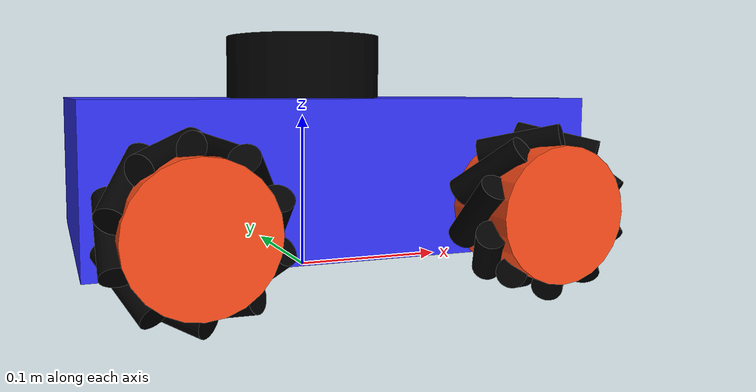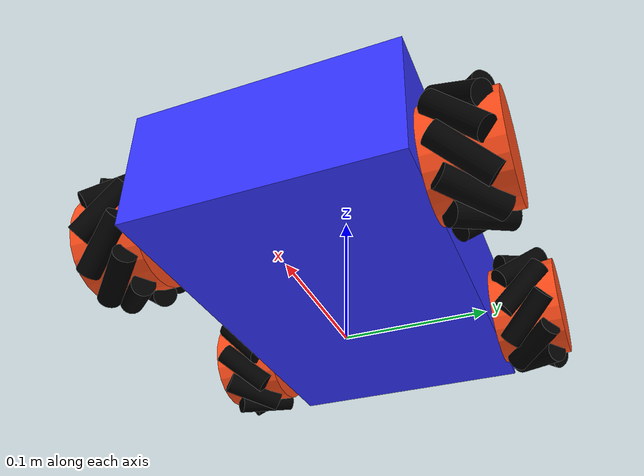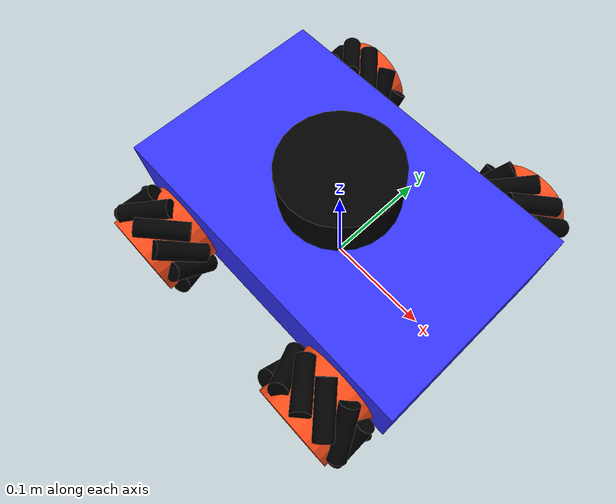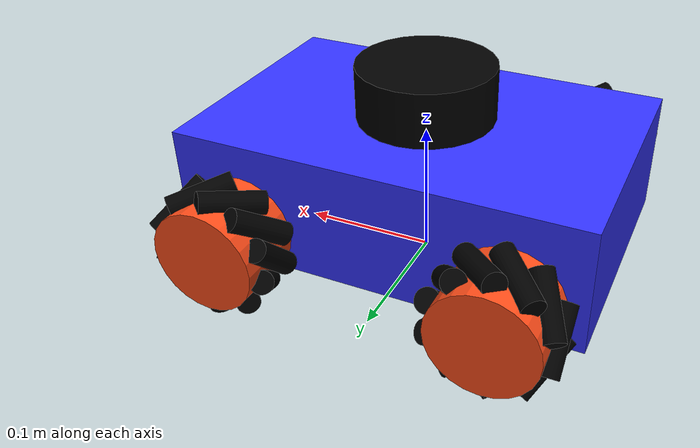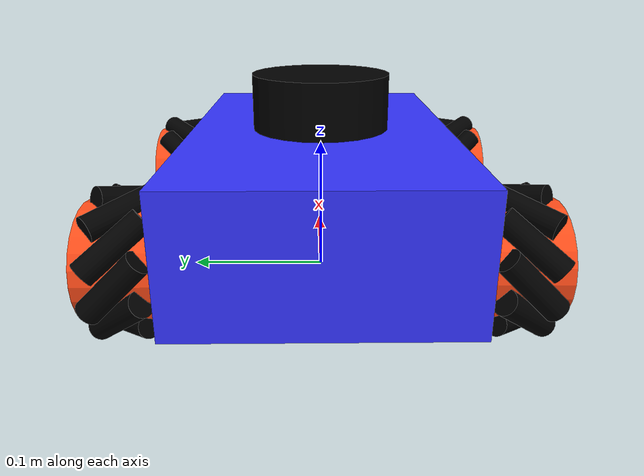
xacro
<?xml version="1.0"?>
<robot xmlns:xacro="http://www.ros.org/wiki/xacro"  name="robot">

    <xacro:include filename="rona_ros2_control.xacro"/>
    <xacro:include filename="rona_gazebo.xacro"/>
    <xacro:include filename="robot_core.xacro"/>
    <xacro:include filename="lidar.xacro"/>

</robot>

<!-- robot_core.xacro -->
<robot xmlns:xacro="http://www.ros.org/wiki/xacro" name="rona">

    <!-- In this file the basic structure of the omnidirectional robot RONA is described -->

    <xacro:include filename="inertial_macros.xacro"/>
    <xacro:include filename="macros.xacro"/>
    <xacro:include filename="colors.xacro"/>
    <xacro:include filename="physical_properties.xacro"/>

    <!-- ROBOT DESCRIPTION START -->

    <!-- Base link -->
    <link name="base_link">
    </link>

    <!-- Chassis -->
    <link name="chassis">
        <visual>
            <origin xyz="0 0 ${chassis_height/2}"/>
            <geometry>
                <box size="${chassis_length} ${chassis_width} ${chassis_height}"/>
            </geometry>
            <material name="blue"/>
        </visual>

        <collision>
            <origin xyz="0 0 ${chassis_height/2}"/>
            <geometry>
                <box size="0.297 0.188 0.09"/>
            </geometry>
            <material name="blue"/>
        </collision>

        <xacro:inertial_box mass="3" x="${chassis_length}" y="${chassis_width}" z="${chassis_height}">
            <origin xyz="0 0 ${chassis_length}" rpy="0 0 0"/>
        </xacro:inertial_box>

    </link>

    <joint name="chassis_joint" type="fixed">
        <parent link="base_link"/>
        <child link="chassis"/>
        <origin xyz="0 0 0.022"/>
    </joint>

    <!-- Front left wheel -->
    <xacro:wheel prefix="front" suffix="left" radius="0.0375" length="0.05" mass="0.4" offset_x="${wheel_offset_x}" offset_y="${wheel_offset_y}" offset_z="${wheel_offset_z}" wheel_roller_orientation="${pi/4}"/>

    <!-- Front right wheel -->
    <xacro:wheel prefix="front" suffix="right" radius="0.0375" length="0.05" mass="0.4" offset_x="${wheel_offset_x}" offset_y="${-wheel_offset_y}" offset_z="${wheel_offset_z}" wheel_roller_orientation="${-pi/4}"/>

    <!-- Back left wheel -->
    <xacro:wheel prefix="rear" suffix="left" radius="0.0375" length="0.05" mass="0.4" offset_x="${-wheel_offset_x}" offset_y="${wheel_offset_y}" offset_z="${wheel_offset_z}" wheel_roller_orientation="${-pi/4}"/>

    <!-- Back right wheel -->
    <xacro:wheel prefix="rear" suffix="right" radius="0.0375" length="0.05" mass="0.4" offset_x="${-wheel_offset_x}" offset_y="${-wheel_offset_y}" offset_z="${wheel_offset_z}" wheel_roller_orientation="${pi/4}"/>

    <!-- ROBOT DESCRIPTION END -->

</robot>

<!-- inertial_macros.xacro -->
<robot xmlns:xacro="http://www.ros.org/wiki/xacro" >

    <!-- Specify some standard inertial calculations https://en.wikipedia.org/wiki/List_of_moments_of_inertia -->
    <!-- These make use of xacro's mathematical functionality -->

    <xacro:macro name="inertial_box" params="mass x y z *origin">
        <inertial>
            <xacro:insert_block name="origin"/>
            <mass value="${mass}" />
            <inertia ixx="${(1/12) * mass * (y*y+z*z)}" ixy="0.0" ixz="0.0"
                    iyy="${(1/12) * mass * (x*x+z*z)}" iyz="0.0"
                    izz="${(1/12) * mass * (x*x+y*y)}" />
        </inertial>
    </xacro:macro>

    <xacro:macro name="inertial_cylinder" params="mass length radius *origin">
        <inertial>
            <xacro:insert_block name="origin"/>
            <mass value="${mass}" />
            <inertia ixx="${(1/12) * mass * (3*radius*radius + length*length)}" ixy="0.0" ixz="0.0"
                    iyy="${(1/12) * mass * (3*radius*radius + length*length)}" iyz="0.0"
                    izz="${(1/2) * mass * (radius*radius)}" />
        </inertial>
    </xacro:macro>

</robot>

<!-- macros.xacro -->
<robot xmlns:xacro="http://www.ros.org/wiki/xacro" >
    <xacro:include filename="physical_properties.xacro"/>
    <xacro:include filename="inertial_macros.xacro"/>

    <!-- Here the macros for the wheel and roller creation are defined -->

    <xacro:macro name="roller" params="prefix suffix theta roller_orientation">
        <link name="${prefix}_${suffix}_roller">
            <visual>
                <origin xyz="0 0 0" rpy="0 0 0" />
                <geometry>
                    <cylinder radius="0.0082" length="0.045"/>
                </geometry>
                <material name="black"/>
            </visual>
            <collision>
                <origin xyz="0 0 0" rpy="0 0 0" />
                <geometry>
                    <cylinder radius="0.0082" length="0.045"/>
                </geometry>
            </collision>

            <inertial>
                <origin xyz="0 0 0"/>
                <mass value="0.001" />
                <inertia ixx="8.72e-8" ixy="0.0" ixz="0.0"
                        iyy="8.72e-8" iyz="0.0"
                        izz="6.722e-9" />
            </inertial>

        </link>
        <joint name="${prefix}_${suffix}_roller_joint" type="continuous">
                <axis xyz="0 0 1" />
                <parent link="${prefix}_wheel"/>
                <child link="${prefix}_${suffix}_roller"/>
                <origin xyz="${cos(theta)*wheel_radius} ${sin(theta)*wheel_radius} 0" rpy="0 ${roller_orientation} ${(pi/2)+theta}"/>
        </joint>

        <gazebo reference="${prefix}_${suffix}_roller">
            <mu1>100000000000000.0</mu1>
            <mu2>100000000000000.0</mu2>
        </gazebo>

    </xacro:macro>

    <xacro:macro name="wheel" params="prefix suffix radius length mass offset_x offset_y offset_z wheel_roller_orientation">
        <link name="${prefix}_${suffix}_wheel">

            <visual>
                <origin xyz="0 0 0" rpy="0 0 0"/>
                <geometry>
                    <cylinder radius="${radius}" length="${length}"/>
                </geometry>
                <material name="orange"/>
            </visual>

            <collision>
                <origin xyz="0 0 0" rpy="0 0 0"/>
                <geometry>
                    <cylinder radius="${radius}" length="${length}"/>
                </geometry>
            </collision>

            <inertial>
                <origin xyz = "0 0 0"/>
                <mass value="0.4"/>
                <inertia ixx="0.000239" ixy="0.0" ixz="0.0"
                        iyy="0.000239" iyz="0.0"
                        izz="0.000044" />
            </inertial>

        </link>

        <joint name="${prefix}_${suffix}_wheel_joint" type="continuous">
            <parent link="chassis"/>
            <child link="${prefix}_${suffix}_wheel"/>
            <origin xyz="${offset_x} ${offset_y} ${offset_z}" rpy="-${pi/2} 0 0"/>
            <axis xyz="0 0 1"/>
        </joint>

        <gazebo reference="${prefix}_${suffix}_wheel">
            <material>Gazebo/Orange</material>
        </gazebo>

        <gazebo reference="${prefix}_${suffix}_roller">
            <mu1>100000000000000.0</mu1>
            <mu2>100000000000000.0</mu2>
        </gazebo>

        <xacro:roller prefix="${prefix}_${suffix}" suffix="one" theta="${2*pi*(1/10)}" roller_orientation="${wheel_roller_orientation}"/>
        <xacro:roller prefix="${prefix}_${suffix}" suffix="two" theta="${2*pi*(2/10)}" roller_orientation="${wheel_roller_orientation}"/>
        <xacro:roller prefix="${prefix}_${suffix}" suffix="thr" theta="${2*pi*(3/10)}" roller_orientation="${wheel_roller_orientation}"/>
        <xacro:roller prefix="${prefix}_${suffix}" suffix="for" theta="${2*pi*(4/10)}" roller_orientation="${wheel_roller_orientation}"/>
        <xacro:roller prefix="${prefix}_${suffix}" suffix="fve" theta="${2*pi*(5/10)}" roller_orientation="${wheel_roller_orientation}"/>
        <xacro:roller prefix="${prefix}_${suffix}" suffix="six" theta="${2*pi*(6/10)}" roller_orientation="${wheel_roller_orientation}"/>
        <xacro:roller prefix="${prefix}_${suffix}" suffix="svn" theta="${2*pi*(7/10)}" roller_orientation="${wheel_roller_orientation}"/>
        <xacro:roller prefix="${prefix}_${suffix}" suffix="ate" theta="${2*pi*(8/10)}" roller_orientation="${wheel_roller_orientation}"/>
        <xacro:roller prefix="${prefix}_${suffix}" suffix="nne" theta="${2*pi*(9/10)}" roller_orientation="${wheel_roller_orientation}"/>
        <xacro:roller prefix="${prefix}_${suffix}" suffix="ten" theta="${2*pi*(10/10)}" roller_orientation="${wheel_roller_orientation}"/>
    </xacro:macro>

</robot>

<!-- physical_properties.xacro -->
<robot xmlns:xacro="http://www.ros.org/wiki/xacro" >

    <!-- Chassis measures -->
    <xacro:property name="chassis_length" value="0.297"/>
    <xacro:property name="chassis_width" value="0.188"/>
    <xacro:property name="chassis_height" value="0.09"/>
    <!-- In rviz the X axis is red, the Y axis green and the Z axis blue -->

    <!-- Wheels measures -->
    <xacro:property name="wheel_offset_y" value="${chassis_width/2 + 0.025}"/>
    <xacro:property name="wheel_offset_x" value="${chassis_length/2 - 0.051}"/>
    <xacro:property name="wheel_offset_z" value="0.028"/>
    <xacro:property name="wheel_radius" value="0.0375"/>

    <!-- Rollers measures -->
    <xacro:property name="roller_diameter" value="0,01"/>
    <xacro:property name="roller_length" value="0,01"/>

</robot>

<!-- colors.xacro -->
<robot xmlns:xacro="http://www.ros.org/wiki/xacro" >

    <material name="white">
        <color rgba="1 1 1 1" />
    </material>

    <material name="orange">
        <color rgba="1 0.3 0.1 1" />
    </material>

    <material name="blue">
        <color rgba="0.2 0.2 1 1" />
    </material>

    <material name="black">
        <color rgba="0 0 0 1" />
    </material>

    <material name="red">
        <color rgba="1 0 0 1" />
    </material>
</robot>

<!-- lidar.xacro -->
<robot xmlns:xacro="http://www.ros.org/wiki/xacro" >

    <link name="laser_frame">
        <visual>
            <geometry>
                <cylinder radius="0.05" length="0.04"/>
            </geometry>
            <material name="black"/>
        </visual>
        <visual>
            <origin xyz="0 0 -0.05"/>
            <geometry>
                <cylinder radius="0.01" length="0.1"/>
            </geometry>
            <material name="black"/>
        </visual>
        <collision>
            <geometry>
                <cylinder radius="0.05" length="0.04"/>
            </geometry>
        </collision>
        <xacro:inertial_cylinder mass="0.1" length="0.04" radius="0.05">
            <origin xyz="0 0 0" rpy="0 0 0"/>
        </xacro:inertial_cylinder>
    </link>

    <joint name="laser_joint" type="fixed">
        <parent link="chassis"/>
        <child link="laser_frame"/>
        <origin xyz="0 0 0.1098" rpy="0 0 0"/>
    </joint>

    <gazebo reference="laser_frame">
        <material>Gazebo/Black</material>

        <!-- This adds a simulated lidar sensor -->
        <sensor name="laser" type="ray">
            <!-- The origin of the sensor is the one of the link in this case -->
            <pose> 0 0 0 0 0 0 </pose>
            <!-- To visualize the rays in gazebo, set it to true -->
            <visualize>true</visualize>
            <!-- This indicates how many times per second we want the sensor to update -->
            <update_rate>10</update_rate>
            <!-- The ray tag specifies the parameters for the virtual ray sensor -->
            <ray>
                <scan>
                    <!-- This indicates that the sensor is scanning horizontally -->
                    <!-- With 360 samples and ranging from -pi to pi radians -->
                    <horizontal>
                        <samples>360</samples>
                        <min_angle>-3.14</min_angle>
                        <max_angle>3.14</max_angle>
                    </horizontal>
                </scan>
                <!-- This specifies the minimum and maximum range of the sensor -->
                <range>
                    <min>0.3</min>
                    <max>12</max>
                </range>
            </ray>
            <!-- Plugins are how we get gazebo to interact with things outside gazebo -->
            <!-- The filename is the important parameter here -->
            <plugin name="laser_controller" filename="libgazebo_ros_ray_sensor.so">
                <!-- This is telling what topic to publish the message to -->
                <ros>
                    <argument>~/out:=scan</argument>
                </ros>
                <!-- Here is set the type of message we want to publish -->
                <output_type>sensor_msgs/LaserScan</output_type>
                <!-- And here the frame name to put in the LaserScan message -->
                <frame_name>laser_frame</frame_name>
            </plugin>
        </sensor>
    </gazebo>

</robot>
